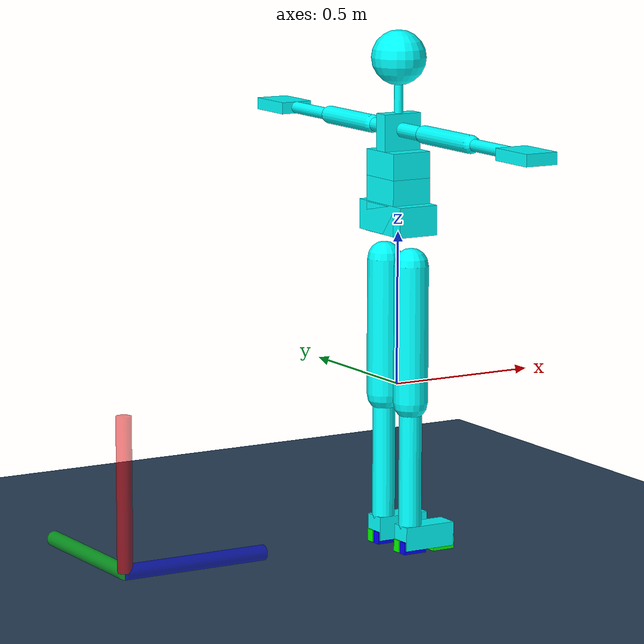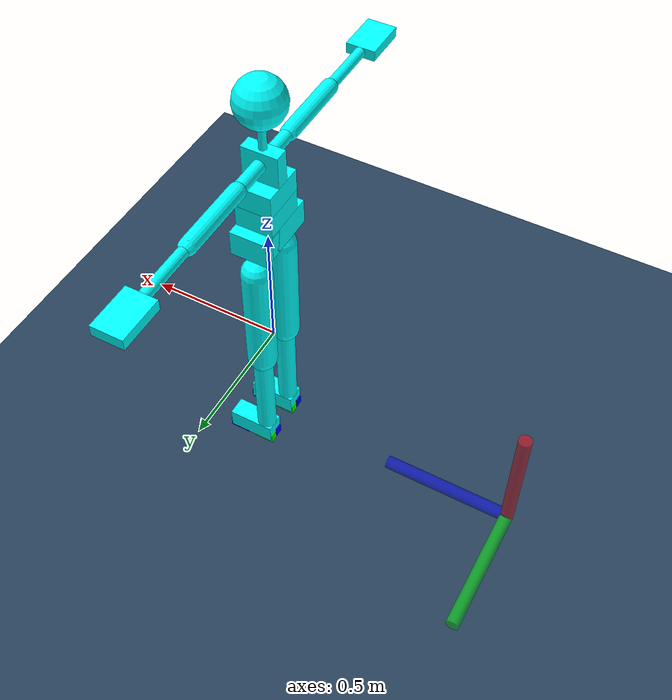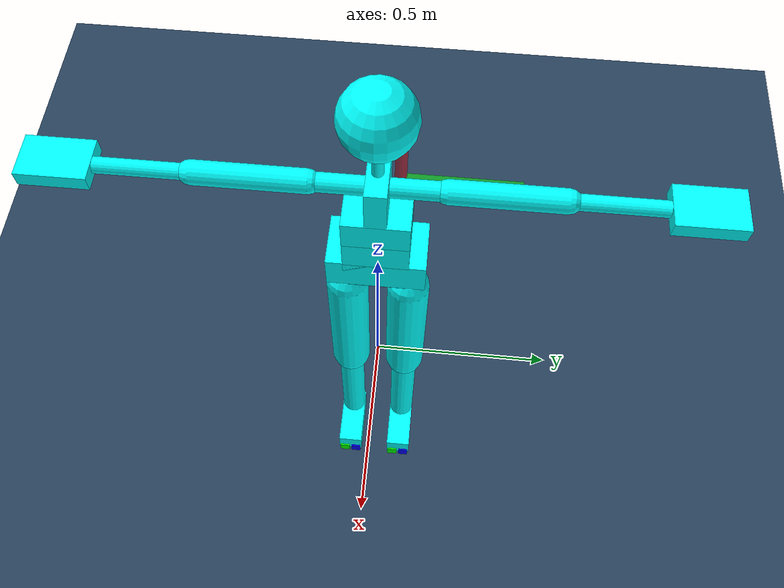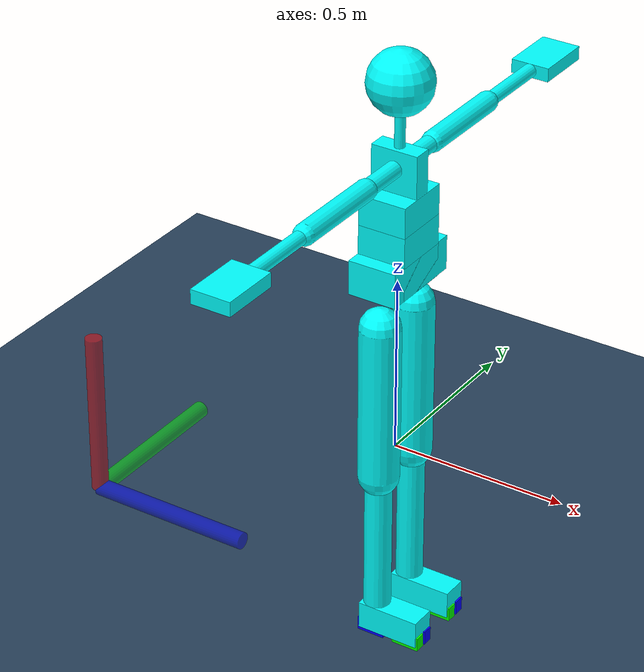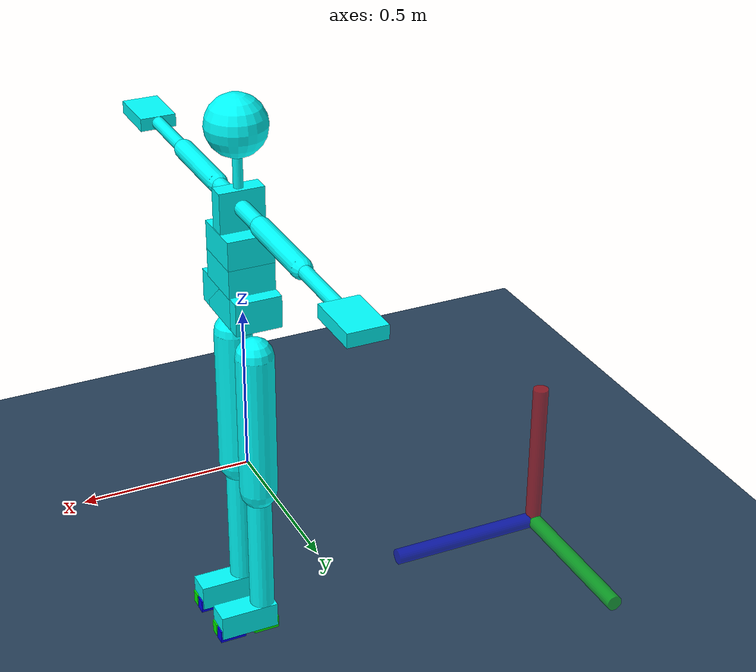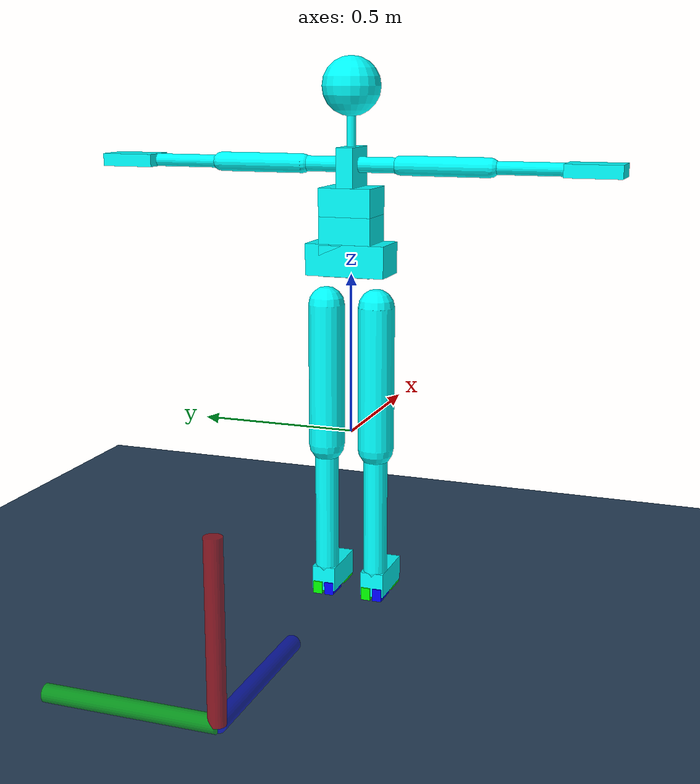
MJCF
<mujoco>

  <visual>
    <map force="0.1" zfar="30"/>
    <rgba haze="0.15 0.25 0.35 1"/>
    <global offwidth="2560" offheight="1440" elevation="-20" azimuth="120"/>
  </visual>

  <asset>
    <texture name="grid" type="2d" builtin="checker" width="512" height="512" rgb1=".1 .2 .3" rgb2=".2 .3 .4"/>
    <material name="grid" texture="grid" texrepeat="1 1" texuniform="true" reflectance=".2"/>
    <texture type="skybox" builtin="gradient" rgb1=".3 .5 .7" rgb2="0 0 0" width="32" height="512"/>
  </asset>

  <include file="robot_urdf.xml"/>

  <worldbody>
    <light name="spotlight" mode="targetbodycom" target="humanoid" diffuse=".8 .8 .8" specular="0.3 0.3 0.3" pos="0 -6 4" cutoff="30"/>

    <geom name="X_axis_ref" type="cylinder" rgba="0 0 1 0.5" size="0.025" fromto="-1 0 -.5 -0.5 0 -.5" contype="0" conaffinity="0"/>
    <geom name="Y_axis_ref" type="cylinder" rgba="0 1 0 0.5" size="0.025" fromto="-1 0 -.5 -1 0.5 -.5" contype="0" conaffinity="0"/>
    <geom name="Z_axis_ref" type="cylinder" rgba="1 0 0 0.5" size="0.025" fromto="-1 0 -.5 -1 0 0" contype="0" conaffinity="0"/>

    <geom name="floor" pos="0 0 -0.55" size="0 0 .05" type="plane" material="grid" condim="3"/>
    <camera name="track" mode="trackcom" pos="0 -4 2.5" xyaxes="1 0 0 0 1 2" target="humanoid" />
  </worldbody>

</mujoco>

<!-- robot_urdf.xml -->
<mujoco model="XSensStyleModel_template">
  <compiler angle="radian"/>
  <worldbody>
    <!-- CUSTOM -->
    <body name="humanoid" pos="0 0 0.4">
      <joint name="humanoid_free" type="free"/>
    <!-- CUSTOM -->
      <inertial pos="0 0 0" quat="0.820473 0.339851 -0.17592 0.424708" mass="10" diaginertia="1e-06 1e-06 1e-06"/>
      <body name="L5_f1" pos="-0.000206 0 0.098478">
        <geom size="0.069075 0.12457 0.0487345" pos="0 0 0.049743" type="box" rgba="0 1 1 1"/>
        <inertial pos="0 0 0" quat="0.820473 0.339851 -0.17592 0.424708" mass="10" diaginertia="1e-06 1e-06 1e-06"/>
        <joint name="jL5S1_rotx" pos="0 0 0" axis="1 0 0" range="-10 10" damping="0.1"/>
        <body name="L5_f2">
          <inertial pos="0 0 0" quat="0.820473 0.339851 -0.17592 0.424708" mass="1e-06" diaginertia="1e-06 1e-06 1e-06"/>
          <joint name="jL5S1_roty" pos="0 0 0" axis="0 1 0" range="-10 10" damping="0.1"/>
          <body name="L5">
            <inertial pos="0 0 0.047552" quat="0.5 0.5 -0.5 0.5" mass="6.3444" diaginertia="0.024177 0.018868 0.014872"/>
            <joint name="jL5S1_rotz" pos="0 0 0" axis="0 0 1" range="-10 10" damping="0.1"/>
            <geom size="0.069075 0.081615 0.047552" pos="0 0 0.047552" type="box" rgba="0 1 1 1"/>
            <body name="L3_f1" pos="0.000374 0 0.095104">
              <inertial pos="0 0 0" quat="0.820473 0.339851 -0.17592 0.424708" mass="1e-06" diaginertia="1e-06 1e-06 1e-06"/>
              <joint name="jL4L3_rotx" pos="0 0 0" axis="1 0 0" range="-10 10" damping="0.1"/>
              <body name="L3_f2">
                <inertial pos="0 0 0" quat="0.820473 0.339851 -0.17592 0.424708" mass="1e-06" diaginertia="1e-06 1e-06 1e-06"/>
                <joint name="jL4L3_roty" pos="0 0 0" axis="0 1 0" range="-10 10" damping="0.1"/>
                <body name="L3">
                  <inertial pos="0 0 0.042958" quat="0.5 0.5 -0.5 0.5" mass="6.3444" diaginertia="0.024177 0.017989 0.013993"/>
                  <joint name="jL4L3_rotz" pos="0 0 0" axis="0 0 1" range="-10 10" damping="0.1"/>
                  <geom size="0.069075 0.081615 0.042958" pos="0 0 0.042958" type="box" rgba="0 1 1 1"/>
                  <body name="T12_f1" pos="0 0 0.085916">
                    <inertial pos="0 0 0" quat="0.820473 0.339851 -0.17592 0.424708" mass="1e-06" diaginertia="1e-06 1e-06 1e-06"/>
                    <joint name="jL1T12_rotx" pos="0 0 0" axis="1 0 0" range="-10 10" damping="0.1"/>
                    <body name="T12_f2">
                      <inertial pos="0 0 0" quat="0.820473 0.339851 -0.17592 0.424708" mass="1e-06" diaginertia="1e-06 1e-06 1e-06"/>
                      <joint name="jL1T12_roty" pos="0 0 0" axis="0 1 0" range="-10 10" damping="0.1"/>
                      <body name="T12">
                        <inertial pos="0 0 0.042958" quat="0.5 0.5 -0.5 0.5" mass="6.3444" diaginertia="0.024177 0.017989 0.013993"/>
                        <joint name="jL1T12_rotz" pos="0 0 0" axis="0 0 1" range="-10 10" damping="0.1"/>
                        <geom size="0.069075 0.081615 0.042958" pos="0 0 0.042958" type="box" rgba="0 1 1 1"/>
                        <body name="T8_f1" pos="0 0 0.085916">
                          <inertial pos="0 0 0" quat="0.820473 0.339851 -0.17592 0.424708" mass="1e-06" diaginertia="1e-06 1e-06 1e-06"/>
                          <joint name="jT9T8_rotx" pos="0 0 0" axis="1 0 0" range="-10 10" damping="0.1"/>
                          <body name="T8_f2">
                            <inertial pos="0 0 0" quat="0.820473 0.339851 -0.17592 0.424708" mass="1e-06" diaginertia="1e-06 1e-06 1e-06"/>
                            <joint name="jT9T8_roty" pos="0 0 0" axis="0 1 0" range="-10 10" damping="0.1"/>
                            <body name="T8">
                              <inertial pos="0 0 0.059874" quat="0.5 0.5 0.5 0.5" mass="2.488" diaginertia="0.0067278 0.0043289 0.0035473"/>
                              <joint name="jT9T8_rotz" pos="0 0 0" axis="0 0 1" range="-10 10" damping="0.1"/>
                              <geom size="0.067285 0.026313 0.059875" pos="0 0 0.059874" type="box" rgba="0 1 1 1"/>
                              <body name="Neck_f1" pos="0 0 0.11975">
                                <inertial pos="0 0 0" quat="0.820473 0.339851 -0.17592 0.424708" mass="1e-06" diaginertia="1e-06 1e-06 1e-06"/>
                                <joint name="jT1C7_rotx" pos="0 0 0" axis="1 0 0" range="-10 10" damping="0.1"/>
                                <body name="Neck_f2">
                                  <inertial pos="0 0 0" quat="0.820473 0.339851 -0.17592 0.424708" mass="1e-06" diaginertia="1e-06 1e-06 1e-06"/>
                                  <joint name="jT1C7_roty" pos="0 0 0" axis="0 1 0" range="-10 10" damping="0.1"/>
                                  <body name="Neck">
                                    <inertial pos="0 0 0.044626" mass="0.7464" diaginertia="0.0006461 0.0006461 0.00030124"/>
                                    <joint name="jT1C7_rotz" pos="0 0 0" axis="0 0 1" range="-10 10" damping="0.1"/>
                                    <geom size="0.014205 0.044626" pos="0 0 0.044626" type="capsule" rgba="0 1 1 1"/>
                                    <body name="Head_f1" pos="0.000152 0 0.089252">
                                      <inertial pos="0 0 0" quat="0.820473 0.339851 -0.17592 0.424708" mass="1e-06" diaginertia="1e-06 1e-06 1e-06"/>
                                      <joint name="jC1Head_rotx" pos="0 0 0" axis="1 0 0" range="-10 10" damping="0.1"/>
                                      <body name="Head_f2">
                                        <inertial pos="0 0 0" quat="0.820473 0.339851 -0.17592 0.424708" mass="1e-06" diaginertia="1e-06 1e-06 1e-06"/>
                                        <joint name="jC1Head_roty" pos="0 0 0" axis="0 1 0" range="-10 10" damping="0.1"/>
                                        <body name="Head">
                                          <inertial pos="0 0 0.089005" mass="2.2392" diaginertia="0.0070955 0.0070955 0.0070955"/>
                                          <joint name="jC1Head_rotz" pos="0 0 0" axis="0 0 1" range="-10 10" damping="0.1"/>
                                          <geom size="0.089005" pos="0 0 0.089005" rgba="0 1 1 1"/>
                                        </body>
                                      </body>
                                    </body>
                                  </body>
                                </body>
                              </body>
                              <body name="RightShoulder_f1" pos="0 -0.026313 0.067052">
                                <inertial pos="0 0 0" quat="0.820473 0.339851 -0.17592 0.424708" mass="1e-06" diaginertia="1e-06 1e-06 1e-06"/>
                                <joint name="jRightC7Shoulder_rotx" pos="0 0 0" axis="1 0 0" range="-10 10" damping="0.1"/>
                                <body name="RightShoulder_f2">
                                  <inertial pos="0 0 0" quat="0.820473 0.339851 -0.17592 0.424708" mass="1e-06" diaginertia="1e-06 1e-06 1e-06"/>
                                  <joint name="jRightC7Shoulder_roty" pos="0 0 0" axis="0 1 0" range="-10 10" damping="0.1"/>
                                  <body name="RightShoulder">
                                    <inertial pos="0 -0.065233 0" quat="0.707107 0.707107 0 0" mass="1.9282" diaginertia="0.0030029 0.0030029 0.00053578"/>
                                    <joint name="jRightC7Shoulder_rotz" pos="0 0 0" axis="0 0 1" range="-10 10" damping="0.1"/>
                                    <geom size="0.023574 0.065235" pos="0 -0.065233 0" quat="0.707105 0.707108 0 0" type="capsule" rgba="0 1 1 1"/>
                                    <body name="RightUpperArm_f1" pos="0 -0.13047 0">
                                      <inertial pos="0 0 0" quat="0.820473 0.339851 -0.17592 0.424708" mass="1e-06" diaginertia="1e-06 1e-06 1e-06"/>
                                      <joint name="jRightShoulder_rotx" pos="0 0 0" axis="1 0 0" range="-10 10" damping="0.1"/>
                                      <body name="RightUpperArm_f2">
                                        <inertial pos="0 0 0" quat="0.820473 0.339851 -0.17592 0.424708" mass="1e-06" diaginertia="1e-06 1e-06 1e-06"/>
                                        <joint name="jRightShoulder_roty" pos="0 0 0" axis="0 1 0" range="-10 10" damping="0.1"/>
                                        <body name="RightUpperArm">
                                          <inertial pos="0 -0.13497 0" quat="0.707107 0.707107 0 0" mass="1.866" diaginertia="0.011736 0.011736 0.00080917"/>
                                          <joint name="jRightShoulder_rotz" pos="0 0 0" axis="0 0 1" range="-10 10" damping="0.1"/>
                                          <geom size="0.029449 0.13497" pos="0 -0.13497 0" quat="0.707105 0.707108 0 0" type="capsule" rgba="0 1 1 1"/>
                                          <body name="RightForeArm_f1" pos="0 -0.26994 0">
                                            <inertial pos="0 0 0" quat="0.820473 0.339851 -0.17592 0.424708" mass="1e-06" diaginertia="1e-06 1e-06 1e-06"/>
                                            <joint name="jRightElbow_rotx" pos="0 0 0" axis="1 0 0" range="-10 10" damping="0.1"/>
                                            <body name="RightForeArm_f2">
                                              <inertial pos="0 0 0" quat="0.820473 0.339851 -0.17592 0.424708" mass="1e-06" diaginertia="1e-06 1e-06 1e-06"/>
                                              <joint name="jRightElbow_roty" pos="0 0 0" axis="0 1 0" range="-10 10" damping="0.1"/>
                                              <body name="RightForeArm">
                                                <inertial pos="0 -0.11124 0" quat="0.707107 0.707107 0 0" mass="1.244" diaginertia="0.0052508 0.0052508 0.00023975"/>
                                                <joint name="jRightElbow_rotz" pos="0 0 0" axis="0 0 1" range="-10 10" damping="0.1"/>
                                                <geom size="0.019633 0.111235" pos="0 -0.11124 0" quat="0.707105 0.707108 0 0" type="capsule" rgba="0 1 1 1"/>
                                                <body name="RightHand_f1" pos="7.7e-05 -0.22247 0">
                                                  <inertial pos="0 0 0" quat="0.820473 0.339851 -0.17592 0.424708" mass="1e-06" diaginertia="1e-06 1e-06 1e-06"/>
                                                  <joint name="jRightWrist_rotx" pos="0 0 0" axis="1 0 0" range="-10 10" damping="0.1"/>
                                                  <body name="RightHand_f2">
                                                    <inertial pos="0 0 0" quat="0.820473 0.339851 -0.17592 0.424708" mass="1e-06" diaginertia="1e-06 1e-06 1e-06"/>
                                                    <joint name="jRightWrist_roty" pos="0 0 0" axis="0 1 0" range="-10 10" damping="0.1"/>
                                                    <body name="RightHand">
                                                      <inertial pos="0 -0.083588 0" quat="0.5 0.5 -0.5 0.5" mass="0.373201" diaginertia="0.0012565 0.00091813 0.00043525"/>
                                                      <joint name="jRightWrist_rotz" pos="0 0 0" axis="0 0 1" range="-10 10" damping="0.1"/>
                                                      <geom size="0.055725 0.08359 0.019633" pos="0 -0.083588 0" type="box" rgba="0 1 1 1"/>
                                                    </body>
                                                  </body>
                                                </body>
                                              </body>
                                            </body>
                                          </body>
                                        </body>
                                      </body>
                                    </body>
                                  </body>
                                </body>
                              </body>
                              <body name="LeftShoulder_f1" pos="0 0.026313 0.067052">
                                <inertial pos="0 0 0" quat="0.820473 0.339851 -0.17592 0.424708" mass="1e-06" diaginertia="1e-06 1e-06 1e-06"/>
                                <joint name="jLeftC7Shoulder_rotx" pos="0 0 0" axis="1 0 0" range="-10 10" damping="0.1"/>
                                <body name="LeftShoulder_f2">
                                  <inertial pos="0 0 0" quat="0.820473 0.339851 -0.17592 0.424708" mass="1e-06" diaginertia="1e-06 1e-06 1e-06"/>
                                  <joint name="jLeftC7Shoulder_roty" pos="0 0 0" axis="0 1 0" range="-10 10" damping="0.1"/>
                                  <body name="LeftShoulder">
                                    <inertial pos="0 0.065233 0" quat="0.707107 0.707107 0 0" mass="1.9282" diaginertia="0.0030029 0.0030029 0.00053578"/>
                                    <joint name="jLeftC7Shoulder_rotz" pos="0 0 0" axis="0 0 1" range="-10 10" damping="0.1"/>
                                    <geom size="0.023574 0.065235" pos="0 0.065233 0" quat="0.707105 0.707108 0 0" type="capsule" rgba="0 1 1 1"/>
                                    <body name="LeftUpperArm_f1" pos="0 0.13047 0">
                                      <inertial pos="0 0 0" quat="0.820473 0.339851 -0.17592 0.424708" mass="1e-06" diaginertia="1e-06 1e-06 1e-06"/>
                                      <joint name="jLeftShoulder_rotx" pos="0 0 0" axis="1 0 0" range="-10 10" damping="0.1"/>
                                      <body name="LeftUpperArm_f2">
                                        <inertial pos="0 0 0" quat="0.820473 0.339851 -0.17592 0.424708" mass="1e-06" diaginertia="1e-06 1e-06 1e-06"/>
                                        <joint name="jLeftShoulder_roty" pos="0 0 0" axis="0 1 0" range="-10 10" damping="0.1"/>
                                        <body name="LeftUpperArm">
                                          <inertial pos="0 0.13497 0" quat="0.707107 0.707107 0 0" mass="1.866" diaginertia="0.011736 0.011736 0.00080917"/>
                                          <joint name="jLeftShoulder_rotz" pos="0 0 0" axis="0 0 1" range="-10 10" damping="0.1"/>
                                          <geom size="0.029449 0.13497" pos="0 0.13497 0" quat="0.707105 0.707108 0 0" type="capsule" rgba="0 1 1 1"/>
                                          <body name="LeftForeArm_f1" pos="0 0.26994 0">
                                            <inertial pos="0 0 0" quat="0.820473 0.339851 -0.17592 0.424708" mass="1e-06" diaginertia="1e-06 1e-06 1e-06"/>
                                            <joint name="jLeftElbow_rotx" pos="0 0 0" axis="1 0 0" range="-10 10" damping="0.1"/>
                                            <body name="LeftForeArm_f2">
                                              <inertial pos="0 0 0" quat="0.820473 0.339851 -0.17592 0.424708" mass="1e-06" diaginertia="1e-06 1e-06 1e-06"/>
                                              <joint name="jLeftElbow_roty" pos="0 0 0" axis="0 1 0" range="-10 10" damping="0.1"/>
                                              <body name="LeftForeArm">
                                                <inertial pos="0 0.11124 0" quat="0.707107 0.707107 0 0" mass="1.244" diaginertia="0.0052508 0.0052508 0.00023975"/>
                                                <joint name="jLeftElbow_rotz" pos="0 0 0" axis="0 0 1" range="-10 10" damping="0.1"/>
                                                <geom size="0.019633 0.111235" pos="0 0.11124 0" quat="0.707105 0.707108 0 0" type="capsule" rgba="0 1 1 1"/>
                                                <body name="LeftHand_f1" pos="7.7e-05 0.22247 0">
                                                  <inertial pos="0 0 0" quat="0.820473 0.339851 -0.17592 0.424708" mass="1e-06" diaginertia="1e-06 1e-06 1e-06"/>
                                                  <joint name="jLeftWrist_rotx" pos="0 0 0" axis="1 0 0" range="-10 10" damping="0.1"/>
                                                  <body name="LeftHand_f2">
                                                    <inertial pos="0 0 0" quat="0.820473 0.339851 -0.17592 0.424708" mass="1e-06" diaginertia="1e-06 1e-06 1e-06"/>
                                                    <joint name="jLeftWrist_roty" pos="0 0 0" axis="0 1 0" range="-10 10" damping="0.1"/>
                                                    <body name="LeftHand">
                                                      <inertial pos="0 0.083588 0" quat="0.5 0.5 -0.5 0.5" mass="0.373201" diaginertia="0.0012565 0.00091813 0.00043525"/>
                                                      <joint name="jLeftWrist_rotz" pos="0 0 0" axis="0 0 1" range="-10 10" damping="0.1"/>
                                                      <geom size="0.055725 0.08359 0.019633" pos="0 0.083588 0" type="box" rgba="0 1 1 1"/>
                                                    </body>
                                                  </body>
                                                </body>
                                              </body>
                                            </body>
                                          </body>
                                        </body>
                                      </body>
                                    </body>
                                  </body>
                                </body>
                              </body>
                            </body>
                          </body>
                        </body>
                      </body>
                    </body>
                  </body>
                </body>
              </body>
            </body>
          </body>
        </body>
      </body>
      <body name="RightUpperLeg_f1" pos="0.000103 -0.081614 0.001009">
        <inertial pos="0 0 0" quat="0.820473 0.339851 -0.17592 0.424708" mass="1e-06" diaginertia="1e-06 1e-06 1e-06"/>
        <joint name="jRightHip_rotx" pos="0 0 0" axis="1 0 0" range="-10 10" damping="0.1"/>
        <body name="RightUpperLeg_f2">
          <inertial pos="0 0 0" quat="0.820473 0.339851 -0.17592 0.424708" mass="1e-06" diaginertia="1e-06 1e-06 1e-06"/>
          <joint name="jRightHip_roty" pos="0 0 0" axis="0 1 0" range="-10 10" damping="0.1"/>
          <body name="RightUpperLeg">
            <inertial pos="0 0 -0.22449" mass="7.775" diaginertia="0.13681 0.13681 0.01241"/>
            <joint name="jRightHip_rotz" pos="0 0 0" axis="0 0 1" range="-10 10" damping="0.1"/>
            <geom size="0.0565 0.22449" pos="0 0 -0.22449" type="capsule" rgba="0 1 1 1"/>
            <body name="RightLowerLeg_f1" pos="3.6e-05 0 -0.44898">
              <inertial pos="0 0 0" quat="0.820473 0.339851 -0.17592 0.424708" mass="1e-06" diaginertia="1e-06 1e-06 1e-06"/>
              <joint name="jRightKnee_rotx" pos="0 0 0" axis="1 0 0" range="-10 10" damping="0.1"/>
              <body name="RightLowerLeg_f2">
                <inertial pos="0 0 0" quat="0.820473 0.339851 -0.17592 0.424708" mass="1e-06" diaginertia="1e-06 1e-06 1e-06"/>
                <joint name="jRightKnee_roty" pos="0 0 0" axis="0 1 0" range="-10 10" damping="0.1"/>
                <body name="RightLowerLeg">
                  <inertial pos="0 0 -0.20304" mass="2.2703" diaginertia="0.031992 0.031992 0.0015867"/>
                  <joint name="jRightKnee_rotz" pos="0 0 0" axis="0 0 1" range="-10 10" damping="0.1"/>
                  <geom size="0.037388 0.20304" pos="0 0 -0.20304" type="capsule" rgba="0 1 1 1"/>
                  <body name="RightFoot_f1" pos="0.000205 0 -0.40608">
                    <inertial pos="0 0 0" quat="0.820473 0.339851 -0.17592 0.424708" mass="1e-06" diaginertia="1e-06 1e-06 1e-06"/>
                    <joint name="jRightAnkle_rotx" pos="0 0 0" axis="1 0 0" range="-10 10" damping="0.1"/>
                    <body name="RightFoot_f2">
                      <inertial pos="0 0 0" quat="0.820473 0.339851 -0.17592 0.424708" mass="1e-06" diaginertia="1e-06 1e-06 1e-06"/>
                      <joint name="jRightAnkle_roty" pos="0 0 0" axis="0 1 0" range="-10 10" damping="0.1"/>
                      <body name="RightFoot">
                        <inertial pos="0.054652 0 -0.039254" quat="0.5 0.5 0.5 0.5" mass="0.8086" diaginertia="0.0025944 0.0025558 0.00079209"/>
                        <joint name="jRightAnkle_rotz" pos="0 0 0" axis="0 0 1" range="-10 10" damping="0.1"/>
                        <geom size="0.089915 0.0373875 0.0392545" pos="0.054652 0 -0.039254" type="box" rgba="0 1 1 1"/>
                        <!-- CUSTOM -->
                        <geom name="pressure_geom_RLB" pos="0 0.0186937 -0.07" type="box" rgba="0 1 0 1" size="0.04 0.015 0.02"/>
                        <geom name="pressure_geom_RRB" pos="0 -0.0186937 -0.07" type="box" rgba="0 0 1 1" size="0.04 0.015 0.02"/>
                        <geom name="pressure_geom_RRF" pos="0.109304 -0.0186937 -0.07" type="box" rgba="0 1 0 1" size="0.04 0.015 0.02"/>
                        <geom name="pressure_geom_RLF" pos="0.109304 0.0186937 -0.07" type="box" rgba="0 0 1 1" size="0.04 0.015 0.02"/>
                        <!-- CUSTOM -->
                        <body name="RightToe_f1" pos="0.14456 0 -0.064752">
                          <inertial pos="0 0 0" quat="0.820473 0.339851 -0.17592 0.424708" mass="1e-06" diaginertia="1e-06 1e-06 1e-06"/>
                          <joint name="jRightBallFoot_rotx" pos="0 0 0" axis="1 0 0" range="-10 10" damping="0.1"/>
                          <body name="RightToe_f2">
                            <inertial pos="0 0 0" quat="0.820473 0.339851 -0.17592 0.424708" mass="1e-06" diaginertia="1e-06 1e-06 1e-06"/>
                            <joint name="jRightBallFoot_roty" pos="0 0 0" axis="0 1 0" range="-10 10" damping="0.1"/>
                            <body name="RightToe">
                              <inertial pos="0.030086 0 0" quat="0.5 0.5 -0.5 0.5" mass="0.0933" diaginertia="7.1624e-05 4.5038e-05 2.9717e-05"/>
                              <joint name="jRightBallFoot_rotz" pos="0 0 0" axis="0 0 1" range="-10 10" damping="0.1"/>
                            </body>
                          </body>
                        </body>
                      </body>
                    </body>
                  </body>
                </body>
              </body>
            </body>
          </body>
        </body>
      </body>
      <body name="LeftUpperLeg_f1" pos="0.000103 0.081614 0.001009">
        <inertial pos="0 0 0" quat="0.820473 0.339851 -0.17592 0.424708" mass="1e-06" diaginertia="1e-06 1e-06 1e-06"/>
        <joint name="jLeftHip_rotx" pos="0 0 0" axis="1 0 0" range="-10 10" damping="0.1"/>
        <body name="LeftUpperLeg_f2">
          <inertial pos="0 0 0" quat="0.820473 0.339851 -0.17592 0.424708" mass="1e-06" diaginertia="1e-06 1e-06 1e-06"/>
          <joint name="jLeftHip_roty" pos="0 0 0" axis="0 1 0" range="-10 10" damping="0.1"/>
          <body name="LeftUpperLeg">
            <inertial pos="0 0 -0.22449" mass="7.775" diaginertia="0.13681 0.13681 0.01241"/>
            <joint name="jLeftHip_rotz" pos="0 0 0" axis="0 0 1" range="-10 10" damping="0.1"/>
            <geom size="0.0565 0.22449" pos="0 0 -0.22449" type="capsule" rgba="0 1 1 1"/>
            <body name="LeftLowerLeg_f1" pos="3.6e-05 0 -0.44898">
              <inertial pos="0 0 0" quat="0.820473 0.339851 -0.17592 0.424708" mass="1e-06" diaginertia="1e-06 1e-06 1e-06"/>
              <joint name="jLeftKnee_rotx" pos="0 0 0" axis="1 0 0" range="-10 10" damping="0.1"/>
              <body name="LeftLowerLeg_f2">
                <inertial pos="0 0 0" quat="0.820473 0.339851 -0.17592 0.424708" mass="1e-06" diaginertia="1e-06 1e-06 1e-06"/>
                <joint name="jLeftKnee_roty" pos="0 0 0" axis="0 1 0" range="-10 10" damping="0.1"/>
                <body name="LeftLowerLeg">
                  <inertial pos="0 0 -0.20304" mass="2.2703" diaginertia="0.031992 0.031992 0.0015867"/>
                  <joint name="jLeftKnee_rotz" pos="0 0 0" axis="0 0 1" range="-10 10" damping="0.1"/>
                  <geom size="0.037388 0.20304" pos="0 0 -0.20304" type="capsule" rgba="0 1 1 1"/>
                  <body name="LeftFoot_f1" pos="0.000205 0 -0.40608">
                    <inertial pos="0 0 0" quat="0.820473 0.339851 -0.17592 0.424708" mass="1e-06" diaginertia="1e-06 1e-06 1e-06"/>
                    <joint name="jLeftAnkle_rotx" pos="0 0 0" axis="1 0 0" range="-10 10" damping="0.1"/>
                    <body name="LeftFoot_f2">
                      <inertial pos="0 0 0" quat="0.820473 0.339851 -0.17592 0.424708" mass="1e-06" diaginertia="1e-06 1e-06 1e-06"/>
                      <joint name="jLeftAnkle_roty" pos="0 0 0" axis="0 1 0" range="-10 10" damping="0.1"/>
                      <body name="LeftFoot">
                        <inertial pos="0.054652 0 -0.039254" quat="0.5 0.5 0.5 0.5" mass="0.8086" diaginertia="0.0025944 0.0025558 0.00079209"/>
                        <joint name="jLeftAnkle_rotz" pos="0 0 0" axis="0 0 1" range="-10 10" damping="0.1"/>
                        <geom size="0.089915 0.0373875 0.0392545" pos="0.054652 0 -0.039254" type="box" rgba="0 1 1 1"/>
                        <!-- CUSTOM -->
                        <geom name="pressure_geom_LLB" pos="0 0.0186937 -0.07" type="box" rgba="0 1 0 1" size="0.04 0.015 0.02"/>
                        <geom name="pressure_geom_LRB" pos="0 -0.0186937 -0.07" type="box" rgba="0 0 1 1" size="0.04 0.015 0.02"/>
                        <geom name="pressure_geom_LRF" pos="0.109304 -0.0186937 -0.07" type="box" rgba="0 1 0 1" size="0.04 0.015 0.02"/>
                        <geom name="pressure_geom_LLF" pos="0.109304 0.0186937 -0.07" type="box" rgba="0 0 1 1" size="0.04 0.015 0.02"/>
                        <!-- CUSTOM -->
                        <body name="LeftToe_f1" pos="0.14456 0 -0.064752">
                          <inertial pos="0 0 0" quat="0.820473 0.339851 -0.17592 0.424708" mass="1e-06" diaginertia="1e-06 1e-06 1e-06"/>
                          <joint name="jLeftBallFoot_rotx" pos="0 0 0" axis="1 0 0" range="-10 10" damping="0.1"/>
                          <body name="LeftToe_f2">
                            <inertial pos="0 0 0" quat="0.820473 0.339851 -0.17592 0.424708" mass="1e-06" diaginertia="1e-06 1e-06 1e-06"/>
                            <joint name="jLeftBallFoot_roty" pos="0 0 0" axis="0 1 0" range="-10 10" damping="0.1"/>
                            <body name="LeftToe">
                              <inertial pos="0.030086 0 0" quat="0.5 0.5 -0.5 0.5" mass="0.0933" diaginertia="7.1624e-05 4.5038e-05 2.9717e-05"/>
                              <joint name="jLeftBallFoot_rotz" pos="0 0 0" axis="0 0 1" range="-10 10" damping="0.1"/>
                            </body>
                          </body>
                        </body>
                      </body>
                    </body>
                  </body>
                </body>
              </body>
            </body>
          </body>
        </body>
      </body>
    </body>
  </worldbody>

  <!-- CUSTOM -->
  <actuator>
    <position name="jLeftBallFoot_rotz" joint="jLeftBallFoot_rotz" forcelimited="true" forcerange="-3 3"/>
    <position name="jLeftBallFoot_roty" joint="jLeftBallFoot_roty" forcelimited="true" forcerange="-3 3"/>
    <position name="jLeftBallFoot_rotx" joint="jLeftBallFoot_rotx" forcelimited="true" forcerange="-3 3"/>
    <position name="jLeftAnkle_rotz" joint="jLeftAnkle_rotz" forcelimited="true" forcerange="-3 3"/>
  </actuator>

  <!-- CUSTOM -->
  <!-- MAKE SURE ALL CYLINDERS ARE CAPSULES (CTRL-F + CTRL-H) TO MAKE COMPATIBLE WITH JAX -->
  <!-- CUSTOM -->

</mujoco>
